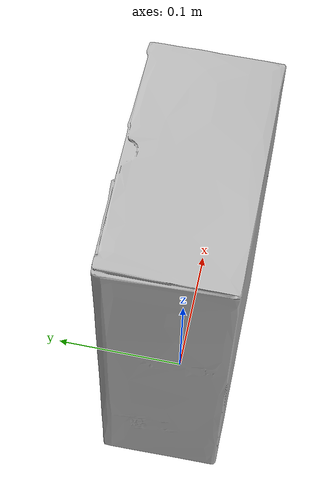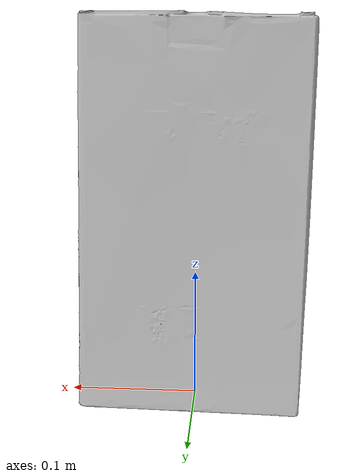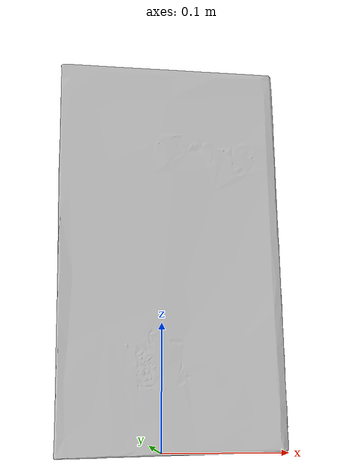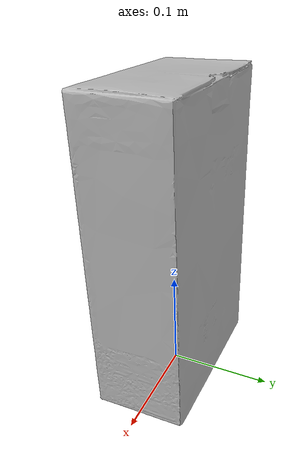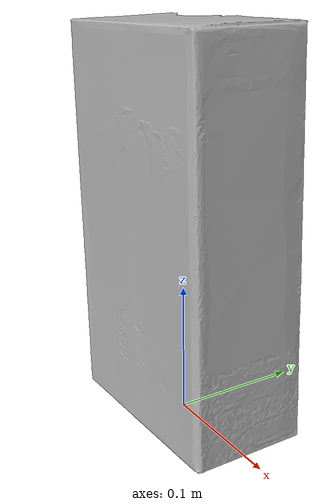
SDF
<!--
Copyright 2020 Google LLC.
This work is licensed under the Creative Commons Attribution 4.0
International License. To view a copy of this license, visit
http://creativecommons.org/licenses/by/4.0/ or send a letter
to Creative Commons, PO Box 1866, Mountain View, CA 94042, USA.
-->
<?xml version="1.0" ?>
<sdf version="1.6">
  <model name="Black_and_Decker_PBJ2000_FusionBlade_Blender_Jars">
    <link name="link_0">
      <visual name="visual">
        <geometry>
          <mesh>
            <uri>meshes/model.obj</uri>
          </mesh>
        </geometry>
      </visual>
      <collision name="collision_0">
        <geometry>
          <mesh>
            <uri>meshes/model.obj</uri>
          </mesh>
        </geometry>
      </collision>
    </link>
  </model>
</sdf>
